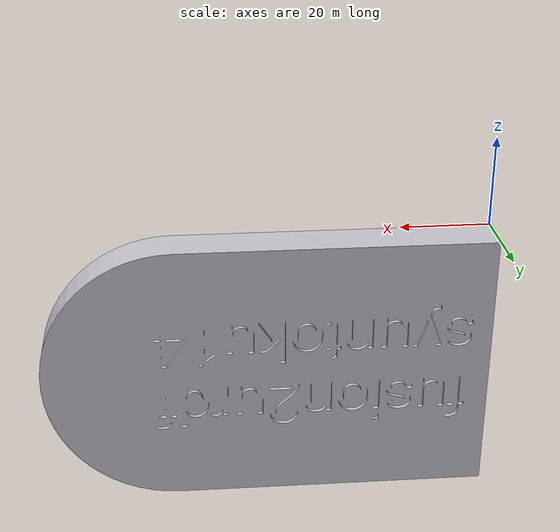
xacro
<?xml version="1.0" ?>
<robot name="Basic_Robot" xmlns:xacro="http://www.ros.org/wiki/xacro">

<link name="base_link">
    <collision>
    <origin xyz="0 0 0" rpy="0 0 0"/>
    <geometry>
        <mesh filename="package://basic_robot_description/meshes/base_link.stl" />
    </geometry>
    </collision>
    <inertial>
    <origin xyz="0.057552808771839256 -0.00028843506105640903 -0.03489403146527645" rpy="0 0 0"/>
    <mass value="0.4424914005445932"/>
    <inertia ixx="0.000128" iyy="0.00046" izz="0.000341" ixy="2e-06" iyz="0.0" ixz="-0.0"/>
    </inertial>
    <visual>
    <origin xyz="0 0 0" rpy="0 0 0"/>
    <geometry>
        <mesh filename="package://basic_robot_description/meshes/base_link.stl" />
    </geometry>
    <material name="silver"/>
    </visual>

</link>
</robot>
